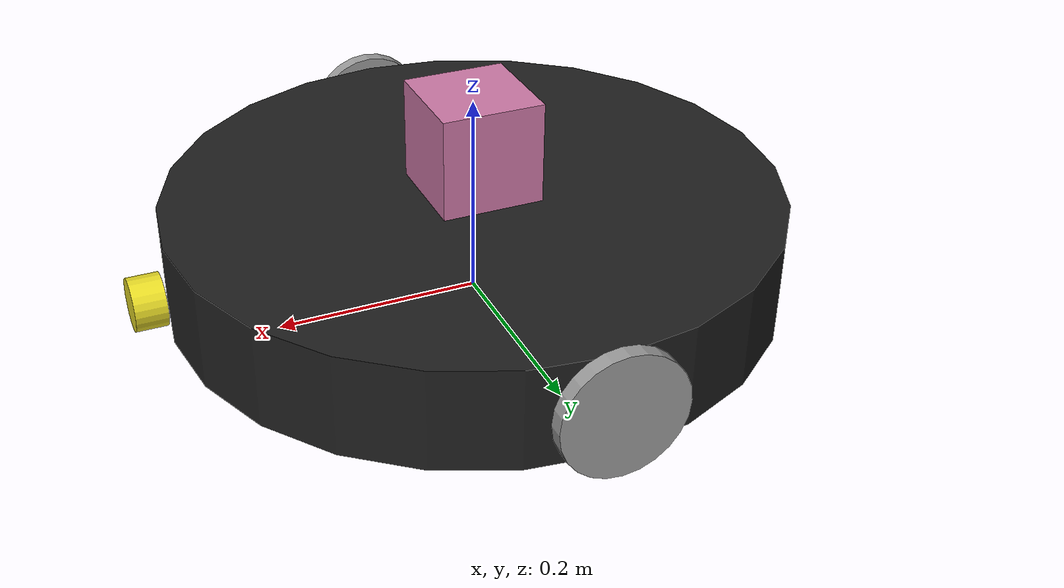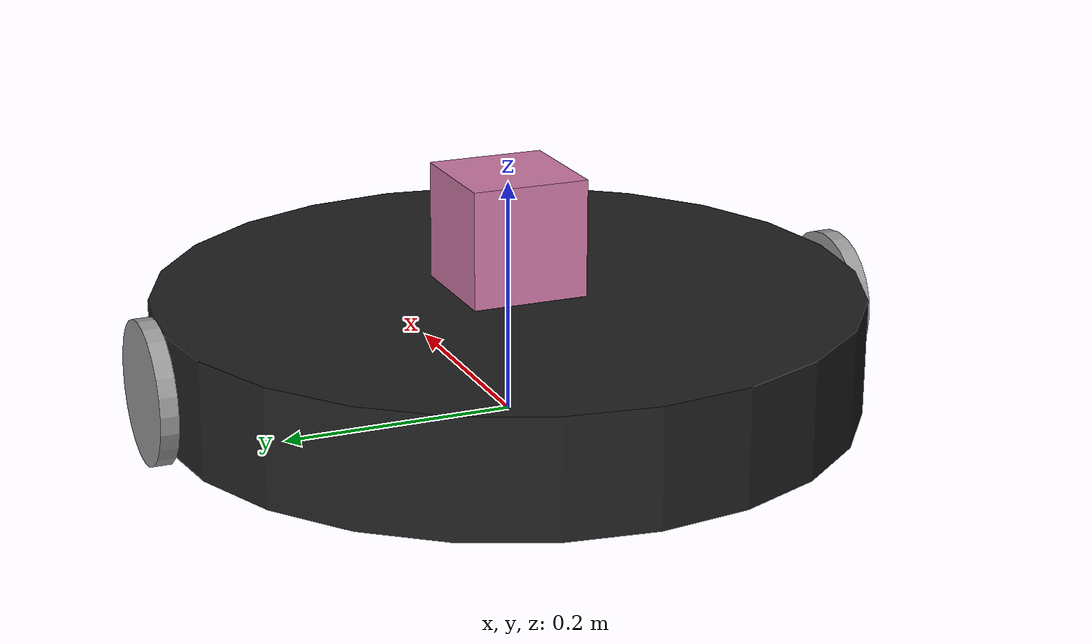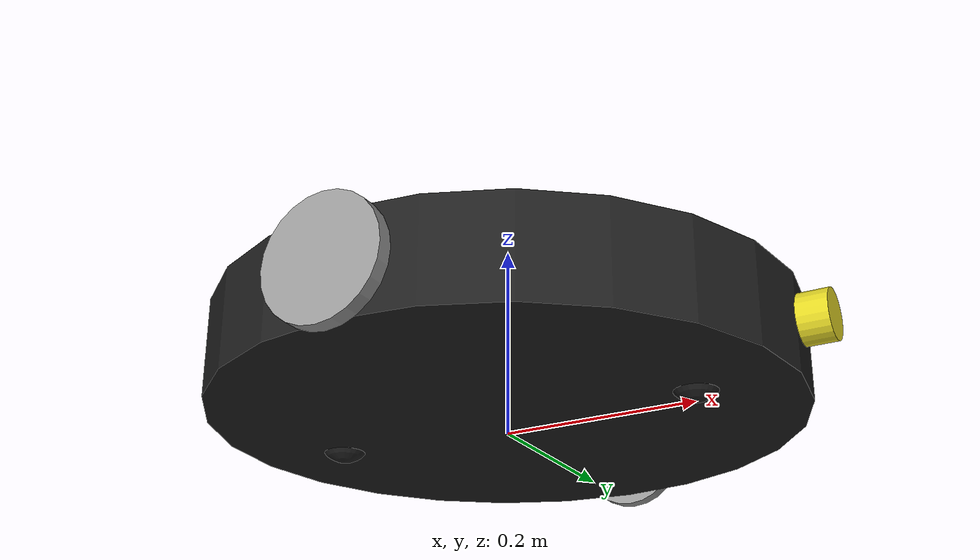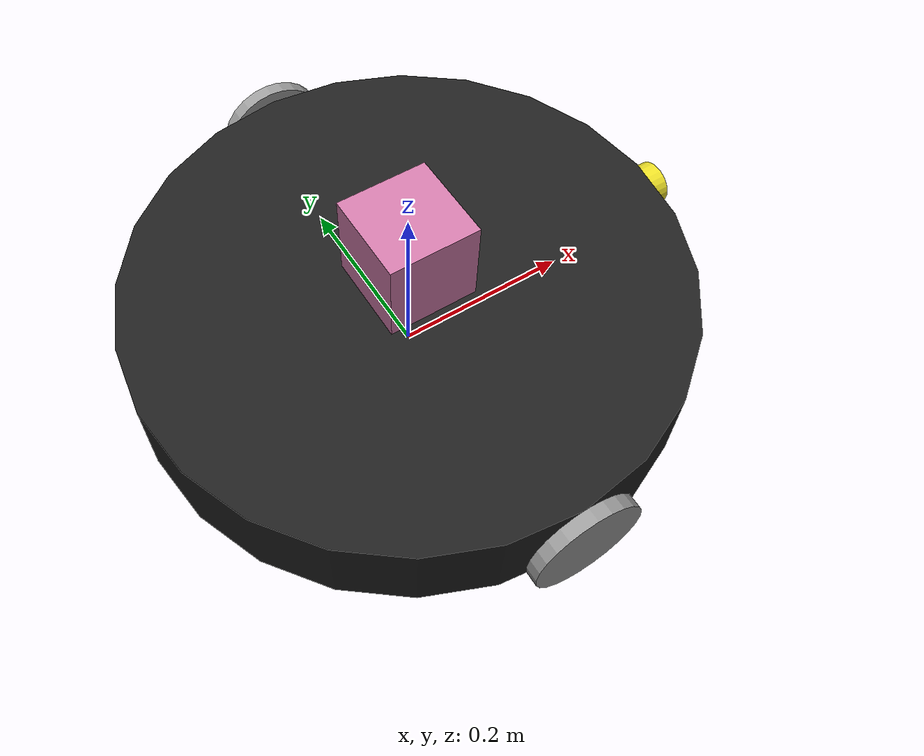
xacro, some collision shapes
<?xml version='1.0'?>

<robot name="my_robot" xmlns:xacro="http://www.ros.org/wiki/xacro">
  <xacro:include filename="$(find my_robot)/urdf/my_robot.gazebo" />
  <link name="robot_footprint"></link>

  <joint name="robot_footprint_joint" type="fixed">
    <origin xyz="0 0 0.06" rpy="0 0 0" />
    <parent link="robot_footprint"/>
    <child link="chassis" />
  </joint>

  <link name='chassis'>
    <pose>0 0 0.1 0 0 0</pose>

    <inertial>
      <mass value="15.0"/>
      <origin xyz="0.0 0 0" rpy=" 0 0 0"/>
      <inertia
          ixx="0.1" ixy="0" ixz="0"
          iyy="0.1" iyz="0"
          izz="0.1"
      />
    </inertial>

    <collision name='collision'>
      <origin xyz="0 0 0" rpy=" 0 0 0"/>
      <geometry>
        <cylinder radius="0.3" length="0.1"/>
      </geometry>
    </collision>

    <visual name='chassis_visual'>
      <origin xyz="0 0 0" rpy=" 0 0 0"/>
      <geometry>
        <cylinder radius="0.3" length="0.1"/>
      </geometry>
    </visual>

    <collision name='back_caster_collision'>
      <origin xyz="-0.2 0 -0.03" rpy=" 0 0 0"/>
      <geometry>
        <sphere radius="0.03"/>
      </geometry>
    </collision>

    <visual name='back_caster_visual'>
      <origin xyz="-0.2 0 -0.03" rpy=" 0 0 0"/>
      <geometry>
        <sphere radius="0.03"/>
      </geometry>
    </visual>

    <collision name='front_caster_collision'>
      <origin xyz="0.2 0 -0.03" rpy=" 0 0 0"/>
      <geometry>
        <sphere radius="0.03"/>
      </geometry>
    </collision>

    <visual name='front_caster_visual'>
      <origin xyz="0.2 0 -0.03" rpy=" 0 0 0"/>
      <geometry>
        <sphere radius="0.03"/>
      </geometry>
    </visual>
  </link>

  <link name='left_wheel'>
    <inertial>
      <mass value="5.0"/>
      <origin xyz="0.0 0 0" rpy=" 0 1.5707 1.5707"/>
      <inertia
          ixx="0.1" ixy="0" ixz="0"
          iyy="0.1" iyz="0"
          izz="0.1"
      />
    </inertial>

    <collision name='left_wheel_collision'>
      <origin xyz="0 0 0" rpy=" 0 1.5707 1.5707"/>
      <geometry>
        <cylinder radius="0.06" length="0.015"/>
      </geometry>
    </collision>

    <visual name='left_wheel_visual'>
      <origin xyz="0.0 0 0" rpy=" 0 1.5707 1.5707"/>
      <geometry>
        <cylinder radius="0.06" length="0.015"/>
      </geometry>
    </visual>
  </link>

  <link name='right_wheel'>
    <inertial>
      <mass value="5.0"/>
      <origin xyz="0.0 0 0" rpy=" 0 1.5707 1.5707"/>
      <inertia
          ixx="0.1" ixy="0" ixz="0"
          iyy="0.1" iyz="0"
          izz="0.1"
      />
    </inertial>

    <collision name='right_wheel_collision'>
      <origin xyz="0 0 0" rpy=" 0 1.5707 1.5707"/>
      <geometry>
        <cylinder radius="0.06" length="0.015"/>
      </geometry>
    </collision>

    <visual name='right_wheel_visual'>
      <origin xyz="0.0 0 0" rpy=" 0 1.5707 1.5707"/>
      <geometry>
        <cylinder radius="0.06" length="0.015"/>
      </geometry>
    </visual>
  </link>

  <joint type="continuous" name="left_wheel_hinge">
    <origin xyz="0 0.31 0" rpy="0 0 0"/>
    <child link="left_wheel"/>
    <parent link="chassis"/>
    <axis xyz="0 1 0" rpy="0 0 0"/>
    <limit effort="10000" velocity="1000"/>
    <dynamics damping="1.0" friction="1.0"/>
  </joint>

  <joint type="continuous" name="right_wheel_hinge">
    <origin xyz="0 -0.31 0" rpy="0 0 0"/>
    <child link="right_wheel"/>
    <parent link="chassis"/>
    <axis xyz="0 1 0" rpy="0 0 0"/>
    <limit effort="10000" velocity="1000"/>
    <dynamics damping="1.0" friction="1.0"/>
  </joint>

  <link name='camera_link'>
    <inertial>
      <mass value="0.1"/>
      <origin xyz="0 0 0" rpy=" 0 0 0"/>
      <inertia
          ixx="1e-6" ixy="0" ixz="0"
          iyy="1e-6" iyz="0"
          izz="1e-6"
      />
    </inertial>

    <collision name='camera_collision'>
      <origin xyz="0 0 0" rpy=" 0 1.5707 0"/>
      <geometry>
        <cylinder radius="0.025" length="0.03"/>
      </geometry>
    </collision>

    <visual name='camera_visual'>
      <origin xyz="0 0 0" rpy=" 0 1.5707 0"/>
      <geometry>
        <cylinder radius="0.025" length="0.03"/>
      </geometry>
    </visual>
  </link>

  <joint type="fixed" name="camera_joint">
    <origin xyz="0.32 0 0" rpy="0 0 0"/>
    <child link="camera_link"/>
    <parent link="chassis"/>
    <axis xyz="0 1 0" rpy="0 0 0"/>
  </joint>

  <joint name="camera_optical_joint" type="fixed">
    <origin xyz="0 0 0" rpy="-1.5707 0 -1.5707"/>
    <parent link="camera_link"/>
    <child link="camera_link_optical"/>
  </joint>

  <link name="camera_link_optical">
  </link>

  <link name='hokuyo'>
    <inertial>
      <mass value="1e-5"/>
      <origin xyz="0 0 0" rpy=" 0 0 0"/>
      <inertia
          ixx="1e-6" ixy="0" ixz="0"
          iyy="1e-6" iyz="0"
          izz="1e-6"
      />
    </inertial>

    <collision name='hokuyo_collision'>
      <origin xyz="0 0 0" rpy=" 0 0 0"/>
      <geometry>
        <box size="0.1 0.1 0.1"/>
      </geometry>
    </collision>

    <visual name='hokuyo_visual'>
      <origin xyz="0 0 0" rpy=" 0 0 0"/>
      <geometry>
        <!--mesh filename="package://my_robot/meshes/hokuyo.dae"/-->
        <!--mesh filename="$(find my_robot)/meshes/hokuyo.dae"/-->
        <mesh filename="file:///home/campo074/Udacity/Project_3/catkin_ws/src/my_robot/meshes/hokuyo.dae"/>

      </geometry>
    </visual>
  </link>

  <joint type="fixed" name="hokuyo_joint">
    <origin xyz="0.0 0 0.1" rpy="0 0 0"/>
    <child link="hokuyo"/>
    <parent link="chassis"/>
    <axis xyz="0 1 0" rpy="0 0 0"/>
  </joint>

  <gazebo reference="chassis">
    <material>Gazebo/Black</material>
  </gazebo>

  <gazebo reference="left_wheel">
    <material>Gazebo/Gray</material>
  </gazebo>

  <gazebo reference="right_wheel">
    <material>Gazebo/Gray</material>
  </gazebo>

  <gazebo reference="camera_link">
    <material>Gazebo/Yellow</material>
  </gazebo>

</robot>
